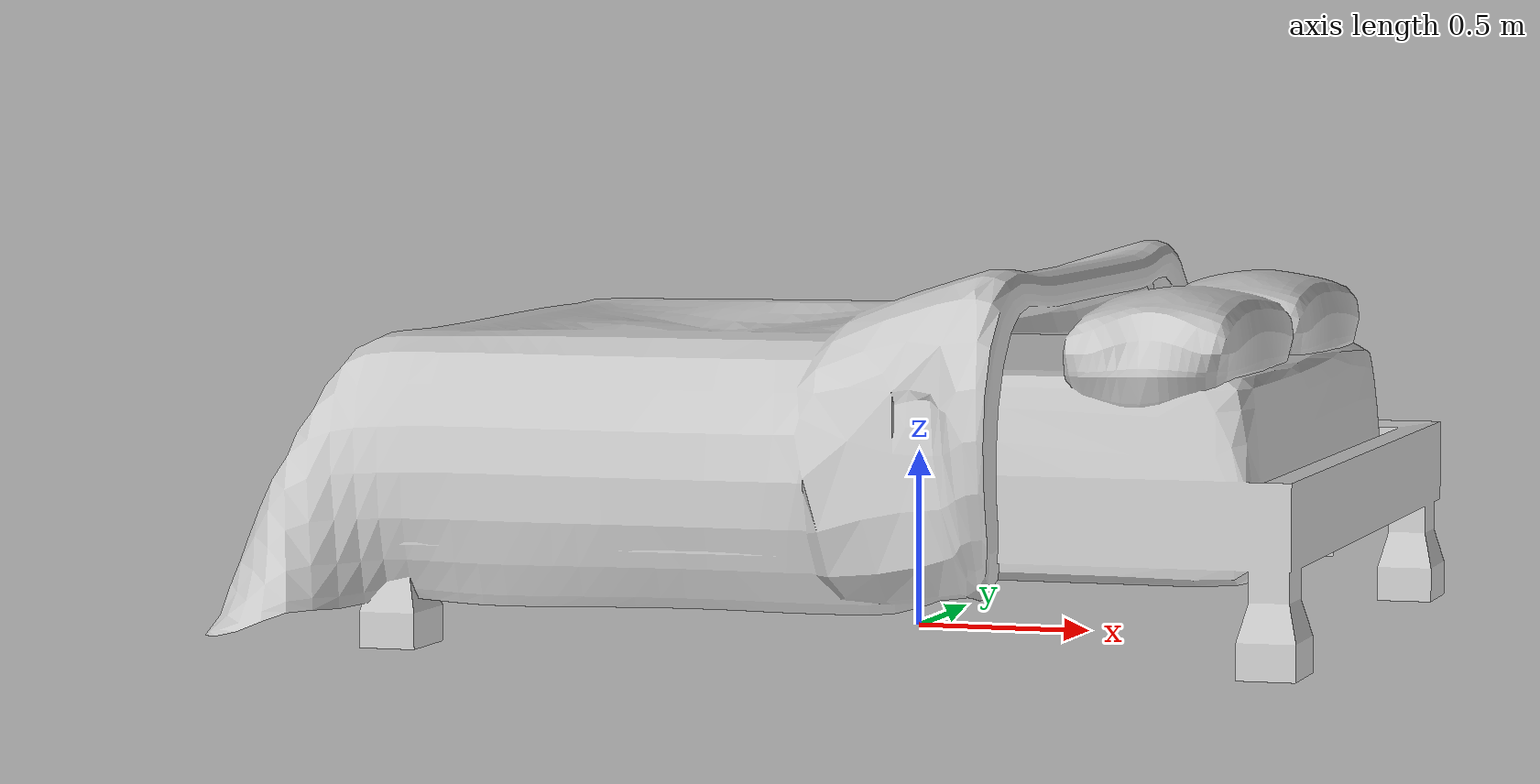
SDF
<sdf version="1.6">
	<model name="bed">
		<static>true</static>
		<pose>0 0 0 0 0 0</pose>
		<link name="bed_axis">
			<collision name="collision">
				<geometry>
					<mesh>
						<uri>meshes/bed.dae</uri>
					</mesh>
				</geometry>
			</collision>
			<visual name="visual">
				<geometry>
					<mesh>
						<uri>meshes/bed.dae</uri>
					</mesh>
				</geometry>
			</visual>
		</link>
	</model>
</sdf>
